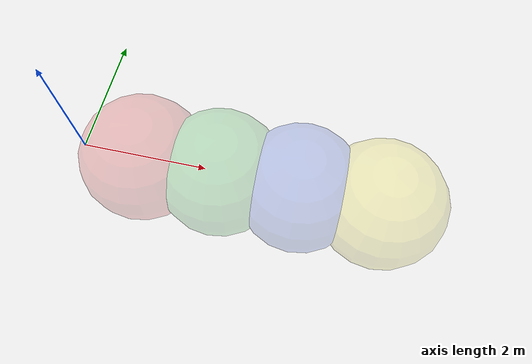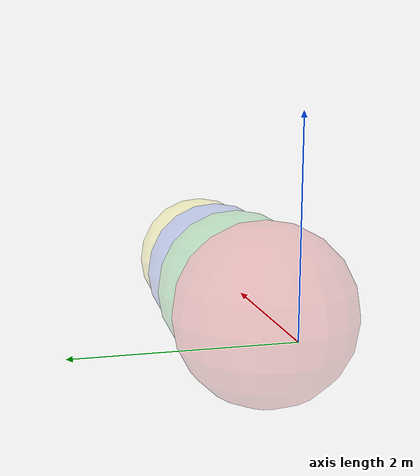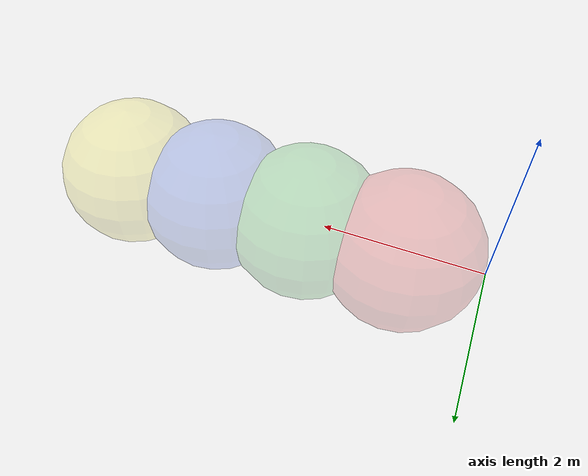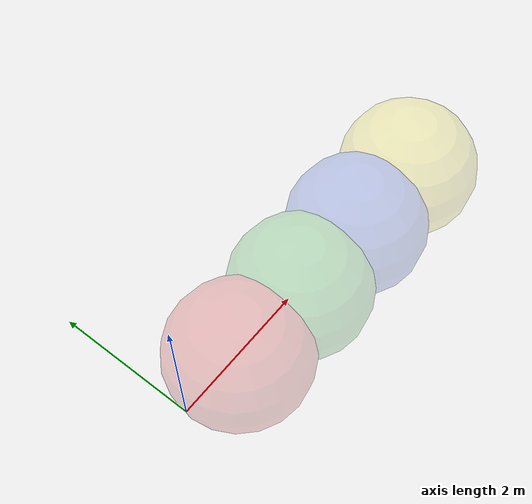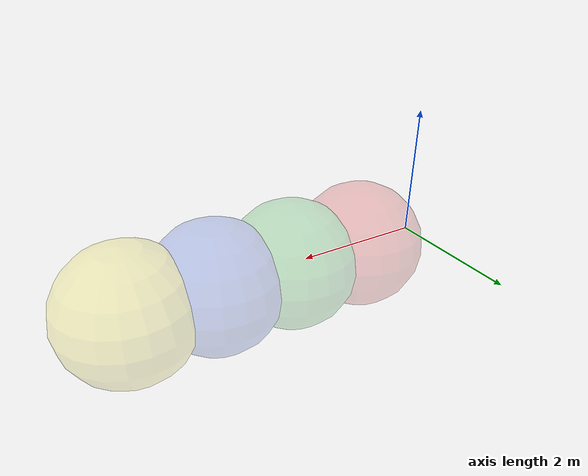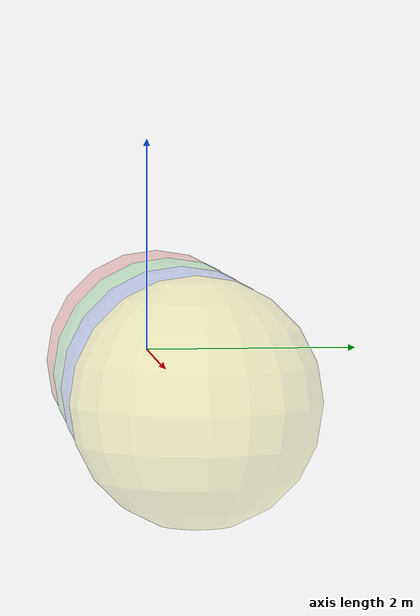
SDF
<?xml version='1.0'?>
<sdf version='1.5'>
    <model name='colorPlumes'>
        <static>true</static>
        <link name='red_plume'>
            <pose>1 0 0 0 -0 0</pose>
            <visual name='visual'>
                <transparency>0.75</transparency>
                <geometry>
                    <sphere>
                        <radius>1.0</radius>
                    </sphere>
                </geometry>
                <material>
                    <script>
                        <uri>file://media/materials/scripts/gazebo.material</uri>
                        <name>Gazebo/Red</name>
                    </script>
                </material>
            </visual>
        </link>
        <link name='green_plume'>
            <pose>2.25 0 0 0 -0 0</pose>
            <visual name='visual'>
                <transparency>0.75</transparency>
                <geometry>
                    <sphere>
                        <radius>1.0</radius>
                    </sphere>
                </geometry>
                <material>
                    <script>
                        <uri>file://media/materials/scripts/gazebo.material</uri>
                        <name>Gazebo/Green</name>
                    </script>
                </material>
            </visual>
        </link>
        <link name='blue_plume'>
            <pose>3.5 0 0 0 -0 0</pose>
            <visual name='visual'>
                <transparency>0.75</transparency>
                <geometry>
                    <sphere>
                        <radius>1.0</radius>
                    </sphere>
                </geometry>
                <material>
                    <script>
                        <uri>file://media/materials/scripts/gazebo.material</uri>
                        <name>Gazebo/Blue</name>
                    </script>
                </material>
            </visual>
        </link>
        <link name='yellow_plume'>
            <pose>4.75 0 0 0 -0 0</pose>
            <visual name='visual'>
                <transparency>0.75</transparency>
                <geometry>
                    <sphere>
                        <radius>1.0</radius>
                    </sphere>
                </geometry>
                <material>
                    <script>
                        <uri>file://media/materials/scripts/gazebo.material</uri>
                        <name>Gazebo/Yellow</name>
                    </script>
                </material>
            </visual>
        </link>

        <!-- inner spheres -->

        <link name='red_gradient'>
            <pose>1 0 0 0 -0 0</pose>
            <visual name='visual'>
                <transparency>0.75</transparency>
                <geometry>
                    <sphere>
                        <radius>0.9</radius>
                    </sphere>
                </geometry>
                <material>
                    <script>
                        <uri>file://media/materials/scripts/gazebo.material</uri>
                        <name>Gazebo/Red</name>
                    </script>
                </material>
            </visual>
        </link>
        <link name='green_gradient'>
            <pose>2.25 0 0 0 -0 0</pose>
            <visual name='visual'>
                <transparency>0.75</transparency>
                <geometry>
                    <sphere>
                        <radius>0.9</radius>
                    </sphere>
                </geometry>
                <material>
                    <script>
                        <uri>file://media/materials/scripts/gazebo.material</uri>
                        <name>Gazebo/Green</name>
                    </script>
                </material>
            </visual>
        </link>
        <link name='blue_gradient'>
            <pose>3.5 0 0 0 -0 0</pose>
            <visual name='visual'>
                <transparency>0.75</transparency>
                <geometry>
                    <sphere>
                        <radius>0.9</radius>
                    </sphere>
                </geometry>
                <material>
                    <script>
                        <uri>file://media/materials/scripts/gazebo.material</uri>
                        <name>Gazebo/Blue</name>
                    </script>
                </material>
            </visual>
        </link>
        <link name='yellow_gradient'>
            <pose>4.75 0 0 0 -0 0</pose>
            <visual name='visual'>
                <transparency>0.75</transparency>
                <geometry>
                    <sphere>
                        <radius>0.9</radius>
                    </sphere>
                </geometry>
                <material>
                    <script>
                        <uri>file://media/materials/scripts/gazebo.material</uri>
                        <name>Gazebo/Yellow</name>
                    </script>
                </material>
            </visual>
        </link>
        <!-- odorant sources -->

        <link name='red_source'>
            <pose>1 0 0 0 -0 0</pose>
            <visual name='visual'>
                <transparency>0.85</transparency>
                <geometry>
                    <sphere>
                        <radius>0.75</radius>
                    </sphere>
                </geometry>
                <material>
                    <script>
                        <uri>file://media/materials/scripts/gazebo.material</uri>
                        <name>Gazebo/Red</name>
                    </script>
                </material>
            </visual>
        </link>
        <link name='green_source'>
            <pose>2.25 0 0 0 -0 0</pose>
            <visual name='visual'>
                <transparency>0.85</transparency>
                <geometry>
                    <sphere>
                        <radius>0.75</radius>
                    </sphere>
                </geometry>
                <material>
                    <script>
                        <uri>file://media/materials/scripts/gazebo.material</uri>
                        <name>Gazebo/Green</name>
                    </script>
                </material>
            </visual>
        </link>
        <link name='blue_source'>
            <pose>3.5 0 0 0 -0 0</pose>
            <visual name='visual'>
                <transparency>0.85</transparency>
                <geometry>
                    <sphere>
                        <radius>0.75</radius>
                    </sphere>
                </geometry>
                <material>
                    <script>
                        <uri>file://media/materials/scripts/gazebo.material</uri>
                        <name>Gazebo/Blue</name>
                    </script>
                </material>
            </visual>
        </link>
        <link name='yellow_source'>
            <pose>4.75 0 0 0 -0 0</pose>
            <visual name='visual'>
                <transparency>0.85</transparency>
                <geometry>
                    <sphere>
                        <radius>0.75</radius>
                    </sphere>
                </geometry>
                <material>
                    <script>
                        <uri>file://media/materials/scripts/gazebo.material</uri>
                        <name>Gazebo/Yellow</name>
                    </script>
                </material>
            </visual>
        </link>
    </model>
</sdf>
